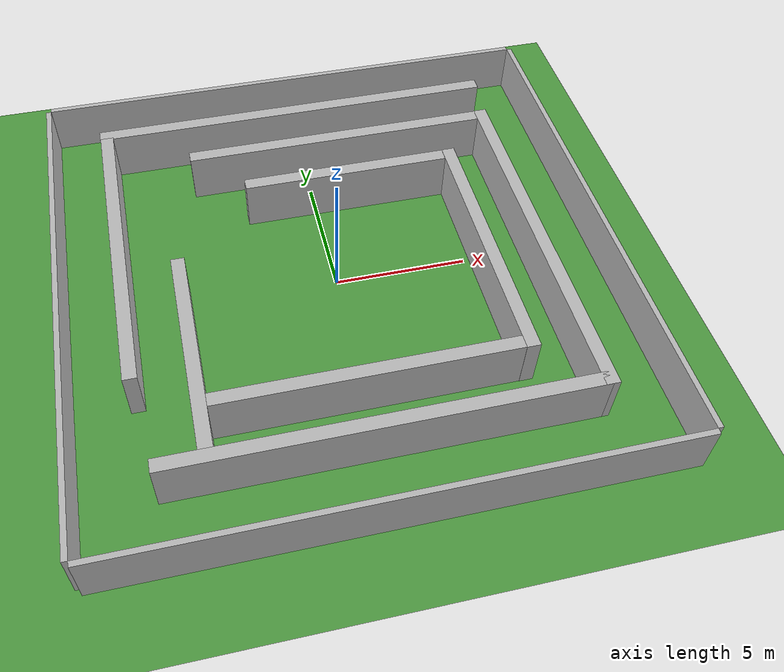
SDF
<sdf version="1.7">
 <world name="spiral_trap_world">
  <physics type="ode">
   <real_time_update_rate>1000</real_time_update_rate>
   <max_step_size>0.001</max_step_size>
   <real_time_factor>1</real_time_factor>
   <gravity>0 0 -9.81</gravity>
  </physics>
  <model name="ground_plane">
   <static>1</static>
   <link name="ground_link">
    <collision name="collision">
     <geometry><plane><normal>0 0 1</normal><size>20 20</size></plane></geometry>
    </collision>
    <visual name="visual">
     <geometry><plane><normal>0 0 1</normal><size>20 20</size></plane></geometry>
     <material>
      <script><uri>file://media/materials/scripts/gazebo.material</uri><name>Gazebo/Grass</name></script>
     </material>
    </visual>
   </link>
  </model>
  <model name="wall_north">
   <static>1</static>
   <pose>0 10.1 1 0 -0 0</pose>
   <link name="link">
    <collision name="collision"><geometry><box><size>20 0.2 2</size></box></geometry></collision>
    <visual name="visual"><geometry><box><size>20 0.2 2</size></box></geometry></visual>
   </link>
  </model>
  <model name="wall_south">
   <static>1</static>
   <pose>0 -10.1 1 0 -0 0</pose>
   <link name="link">
    <collision name="collision"><geometry><box><size>20 0.2 2</size></box></geometry></collision>
    <visual name="visual"><geometry><box><size>20 0.2 2</size></box></geometry></visual>
   </link>
  </model>
  <model name="wall_east">
   <static>1</static>
   <pose>10.1 0 1 0 -0 0</pose>
   <link name="link">
    <collision name="collision"><geometry><box><size>0.2 20 2</size></box></geometry></collision>
    <visual name="visual"><geometry><box><size>0.2 20 2</size></box></geometry></visual>
   </link>
  </model>
  <model name="wall_west">
   <static>1</static>
   <pose>-10.1 0 1 0 -0 0</pose>
   <link name="link">
    <collision name="collision"><geometry><box><size>0.2 20 2</size></box></geometry></collision>
    <visual name="visual"><geometry><box><size>0.2 20 2</size></box></geometry></visual>
   </link>
  </model>
  <model name="spiral_0">
   <static>1</static>
   <pose>-0.098053 8 1 0 -0 0</pose>
   <link name="link">
    <collision name="collision"><geometry><box><size>16 0.5 2</size></box></geometry></collision>
    <visual name="visual"><geometry><box><size>16 0.5 2</size></box></geometry></visual>
   </link>
  </model>
  <model name="spiral_1">
   <static>1</static>
   <pose>7.49993 -0.734028 1 0 -0 1.5707</pose>
   <link name="link">
    <collision name="collision"><geometry><box><size>14 0.5 2</size></box></geometry></collision>
    <visual name="visual"><geometry><box><size>14 0.5 2</size></box></geometry></visual>
   </link>
  </model>
  <model name="spiral_2">
   <static>1</static>
   <pose>0 -7.48643 1 0 -0 0</pose>
   <link name="link">
    <collision name="collision"><geometry><box><size>15 0.5 2</size></box></geometry></collision>
    <visual name="visual"><geometry><box><size>15 0.5 2</size></box></geometry></visual>
   </link>
  </model>
  <model name="spiral_3">
   <static>1</static>
   <pose>-7.83124 1.82688 1 0 -0 1.5707</pose>
   <link name="link">
    <collision name="collision"><geometry><box><size>12 0.5 2</size></box></geometry></collision>
    <visual name="visual"><geometry><box><size>12 0.5 2</size></box></geometry></visual>
   </link>
  </model>
  <model name="spiral_4">
   <static>1</static>
   <pose>1.33064 6 1 0 -0 0</pose>
   <link name="link">
    <collision name="collision"><geometry><box><size>12 0.5 2</size></box></geometry></collision>
    <visual name="visual"><geometry><box><size>12 0.5 2</size></box></geometry></visual>
   </link>
  </model>
  <model name="spiral_5">
   <static>1</static>
   <pose>5.49993 -0.758365 1 0 -0 1.5707</pose>
   <link name="link">
    <collision name="collision"><geometry><box><size>10 0.5 2</size></box></geometry></collision>
    <visual name="visual"><geometry><box><size>10 0.5 2</size></box></geometry></visual>
   </link>
  </model>
  <model name="spiral_6">
   <static>1</static>
   <pose>0 -5.5 1 0 -0 0</pose>
   <link name="link">
    <collision name="collision"><geometry><box><size>11 0.5 2</size></box></geometry></collision>
    <visual name="visual"><geometry><box><size>11 0.5 2</size></box></geometry></visual>
   </link>
  </model>
  <model name="spiral_7">
   <static>1</static>
   <pose>-5.7481 -3.29021 1 0 -0 1.5707</pose>
   <link name="link">
    <collision name="collision"><geometry><box><size>8 0.5 2</size></box></geometry></collision>
    <visual name="visual"><geometry><box><size>8 0.5 2</size></box></geometry></visual>
   </link>
  </model>
  <model name="spiral_8">
   <static>1</static>
   <pose>1.24758 3.98206 1 0 -0 0</pose>
   <link name="link">
    <collision name="collision"><geometry><box><size>8 0.5 2</size></box></geometry></collision>
    <visual name="visual"><geometry><box><size>8 0.5 2</size></box></geometry></visual>
   </link>
  </model>
  <light name="sun" type="directional">
   <pose>0 0 10 0 -0 0</pose>
   <diffuse>0.8 0.8 0.8 1</diffuse>
   <specular>0.2 0.2 0.2 1</specular>
   <attenuation>
    <range>1000</range>
    <constant>0.9</constant>
    <linear>0.01</linear>
    <quadratic>0.001</quadratic>
   </attenuation>
   <direction>-0.5 0.1 -0.9</direction>
   <spot><inner_angle>0</inner_angle><outer_angle>0</outer_angle><falloff>0</falloff></spot>
  </light>
  <gravity>0 0 -9.8</gravity>
  <magnetic_field>6e-06 2.3e-05 -4.2e-05</magnetic_field>
  <atmosphere type="adiabatic"/>
  <scene><ambient>0.4 0.4 0.4 1</ambient><background>0.7 0.7 0.7 1</background><shadows>1</shadows></scene>
  <spherical_coordinates>
   <surface_model>EARTH_WGS84</surface_model>
   <latitude_deg>0</latitude_deg>
   <longitude_deg>0</longitude_deg>
   <elevation>0</elevation>
   <heading_deg>0</heading_deg>
  </spherical_coordinates>
 </world>
</sdf>
